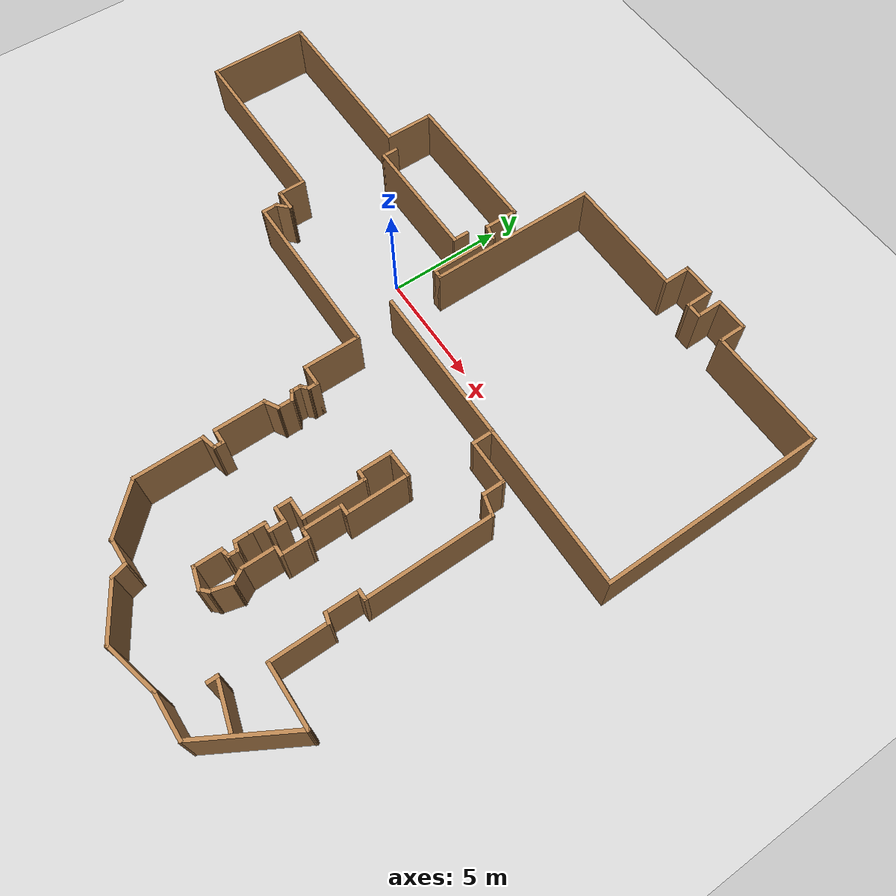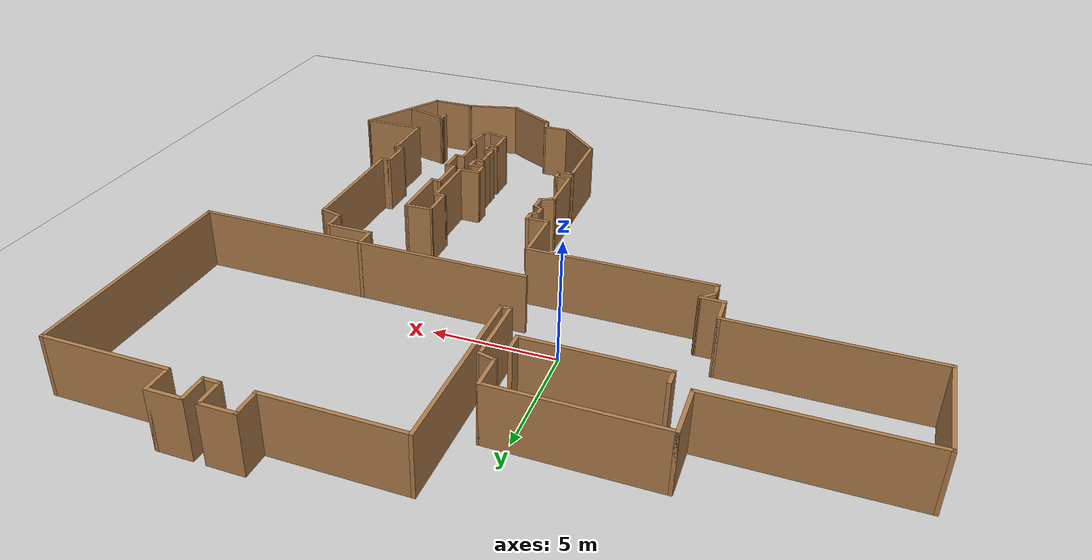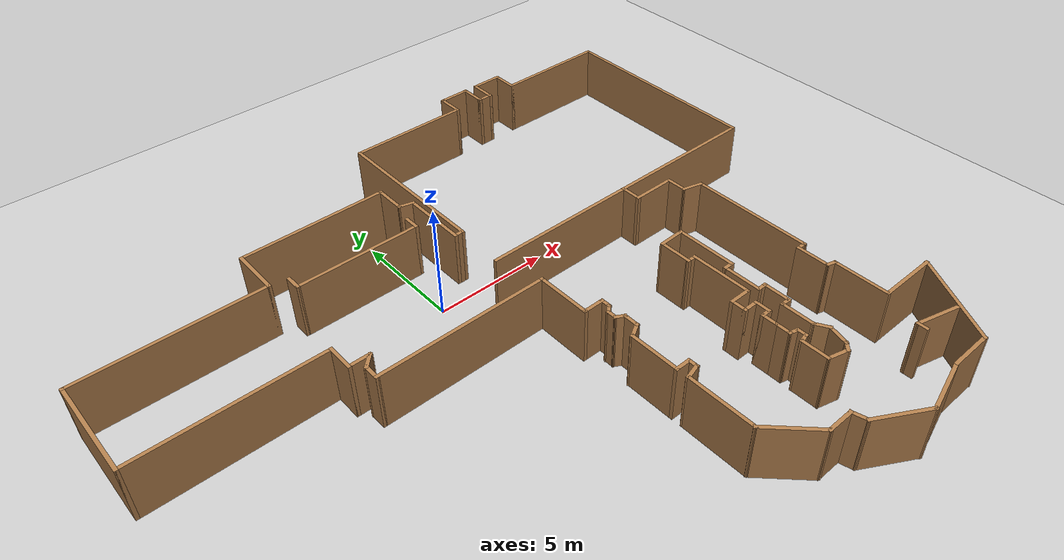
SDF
<sdf version="1.6">
 <world name="default">
  <model name="ground_plane">
   <static>1</static>
   <link name="link">
    <collision name="collision">
     <geometry><plane><normal>0 0 1</normal><size>100 100</size></plane></geometry>
     <surface><friction><ode><mu>100</mu><mu2>50</mu2></ode></friction></surface>
    </collision>
    <visual name="visual">
     <cast_shadows>0</cast_shadows>
     <geometry><plane><normal>0 0 1</normal><size>100 100</size></plane></geometry>
     <material>
      <script><uri>file://media/materials/scripts/gazebo.material</uri><name>Gazebo/Grey</name></script>
     </material>
    </visual>
   </link>
  </model>
  <model name="Robita_0">
   <pose>1.32667 -3.55766 0 0 -0 0</pose>
   <link name="Wall_0">
    <collision name="Wall_0_Collision">
     <geometry><box><size>4.5 0.15 2.5</size></box></geometry>
     <pose>0 0 1.25 0 -0 0</pose>
    </collision>
    <visual name="Wall_0_Visual">
     <pose>0 0 1.25 0 -0 0</pose>
     <geometry><box><size>4.5 0.15 2.5</size></box></geometry>
     <material>
      <script><uri>file://media/materials/scripts/gazebo.material</uri><name>Gazebo/Wood</name></script>
      <ambient>1 1 1 1</ambient>
     </material>
    </visual>
    <pose>-14.3148 4.60052 0 0 0 -1.5708</pose>
   </link>
   <link name="Wall_1">
    <collision name="Wall_1_Collision">
     <geometry><box><size>7.75 0.15 2.5</size></box></geometry>
     <pose>0 0 1.25 0 -0 0</pose>
    </collision>
    <visual name="Wall_1_Visual">
     <pose>0 0 1.25 0 -0 0</pose>
     <geometry><box><size>7.75 0.15 2.5</size></box></geometry>
     <material>
      <script><uri>file://media/materials/scripts/gazebo.material</uri><name>Gazebo/Wood</name></script>
      <ambient>1 1 1 1</ambient>
     </material>
    </visual>
    <pose>-10.5148 2.42552 0 0 -0 0</pose>
   </link>
   <link name="Wall_10">
    <collision name="Wall_10_Collision">
     <geometry><box><size>0.5 0.15 2.5</size></box></geometry>
     <pose>0 0 1.25 0 -0 0</pose>
    </collision>
    <visual name="Wall_10_Visual">
     <pose>0 0 1.25 0 -0 0</pose>
     <geometry><box><size>0.5 0.15 2.5</size></box></geometry>
     <material>
      <script><uri>file://media/materials/scripts/gazebo.material</uri><name>Gazebo/Wood</name></script>
      <ambient>1 1 1 1</ambient>
     </material>
    </visual>
    <pose>1.91096 -2.22374 0 0 0 -1.5708</pose>
   </link>
   <link name="Wall_101">
    <collision name="Wall_101_Collision">
     <geometry><box><size>9.75 0.15 2.5</size></box></geometry>
     <pose>0 0 1.25 0 -0 0</pose>
    </collision>
    <visual name="Wall_101_Visual">
     <pose>0 0 1.25 0 -0 0</pose>
     <geometry><box><size>9.75 0.15 2.5</size></box></geometry>
     <material>
      <script><uri>file://media/materials/scripts/gazebo.material</uri><name>Gazebo/Wood</name></script>
      <ambient>1 1 1 1</ambient>
     </material>
    </visual>
    <pose>14.3148 7.07023 0 0 0 -1.5708</pose>
   </link>
   <link name="Wall_104">
    <collision name="Wall_104_Collision">
     <geometry><box><size>14 0.15 2.5</size></box></geometry>
     <pose>0 0 1.25 0 -0 0</pose>
    </collision>
    <visual name="Wall_104_Visual">
     <pose>0 0 1.25 0 -0 0</pose>
     <geometry><box><size>14 0.15 2.5</size></box></geometry>
     <material>
      <script><uri>file://media/materials/scripts/gazebo.material</uri><name>Gazebo/Wood</name></script>
      <ambient>1 1 1 1</ambient>
     </material>
    </visual>
    <pose>7.38978 2.27023 0 0 -0 3.14159</pose>
   </link>
   <link name="Wall_108">
    <collision name="Wall_108_Collision">
     <geometry><box><size>1 0.15 2.5</size></box></geometry>
     <pose>0 0 1.25 0 -0 0</pose>
    </collision>
    <visual name="Wall_108_Visual">
     <pose>0 0 1.25 0 -0 0</pose>
     <geometry><box><size>1 0.15 2.5</size></box></geometry>
     <material>
      <script><uri>file://media/materials/scripts/gazebo.material</uri><name>Gazebo/Wood</name></script>
      <ambient>1 1 1 1</ambient>
     </material>
    </visual>
    <pose>7.33038 1.85173 0 0 -0 1.5708</pose>
   </link>
   <link name="Wall_11">
    <collision name="Wall_11_Collision">
     <geometry><box><size>0.5 0.15 2.5</size></box></geometry>
     <pose>0 0 1.25 0 -0 0</pose>
    </collision>
    <visual name="Wall_11_Visual">
     <pose>0 0 1.25 0 -0 0</pose>
     <geometry><box><size>0.5 0.15 2.5</size></box></geometry>
     <material>
      <script><uri>file://media/materials/scripts/gazebo.material</uri><name>Gazebo/Wood</name></script>
      <ambient>1 1 1 1</ambient>
     </material>
    </visual>
    <pose>1.78721 -2.52249 0 0 0 -2.35619</pose>
   </link>
   <link name="Wall_110">
    <collision name="Wall_110_Collision">
     <geometry><box><size>1.5 0.15 2.5</size></box></geometry>
     <pose>0 0 1.25 0 -0 0</pose>
    </collision>
    <visual name="Wall_110_Visual">
     <pose>0 0 1.25 0 -0 0</pose>
     <geometry><box><size>1.5 0.15 2.5</size></box></geometry>
     <material>
      <script><uri>file://media/materials/scripts/gazebo.material</uri><name>Gazebo/Wood</name></script>
      <ambient>1 1 1 1</ambient>
     </material>
    </visual>
    <pose>5.90773 -1.97726 0 0 0 -1.57103</pose>
   </link>
   <link name="Wall_118">
    <collision name="Wall_118_Collision">
     <geometry><box><size>0.5 0.15 2.5</size></box></geometry>
     <pose>0 0 1.25 0 -0 0</pose>
    </collision>
    <visual name="Wall_118_Visual">
     <pose>0 0 1.25 0 -0 0</pose>
     <geometry><box><size>0.5 0.15 2.5</size></box></geometry>
     <material>
      <script><uri>file://media/materials/scripts/gazebo.material</uri><name>Gazebo/Wood</name></script>
      <ambient>1 1 1 1</ambient>
     </material>
    </visual>
    <pose>6.08258 -2.65212 0 0 -0 0</pose>
   </link>
   <link name="Wall_119">
    <collision name="Wall_119_Collision">
     <geometry><box><size>2.75 0.15 2.5</size></box></geometry>
     <pose>0 0 1.25 0 -0 0</pose>
    </collision>
    <visual name="Wall_119_Visual">
     <pose>0 0 1.25 0 -0 0</pose>
     <geometry><box><size>2.75 0.15 2.5</size></box></geometry>
     <material>
      <script><uri>file://media/materials/scripts/gazebo.material</uri><name>Gazebo/Wood</name></script>
      <ambient>1 1 1 1</ambient>
     </material>
    </visual>
    <pose>6.25773 -3.95226 0 0 0 -1.57068</pose>
   </link>
   <link name="Wall_12">
    <collision name="Wall_12_Collision">
     <geometry><box><size>0.5 0.15 2.5</size></box></geometry>
     <pose>0 0 1.25 0 -0 0</pose>
    </collision>
    <visual name="Wall_12_Visual">
     <pose>0 0 1.25 0 -0 0</pose>
     <geometry><box><size>0.5 0.15 2.5</size></box></geometry>
     <material>
      <script><uri>file://media/materials/scripts/gazebo.material</uri><name>Gazebo/Wood</name></script>
      <ambient>1 1 1 1</ambient>
     </material>
    </visual>
    <pose>1.66347 -2.82123 0 0 0 -1.5708</pose>
   </link>
   <link name="Wall_127">
    <collision name="Wall_127_Collision">
     <geometry><box><size>1 0.15 2.5</size></box></geometry>
     <pose>0 0 1.25 0 -0 0</pose>
    </collision>
    <visual name="Wall_127_Visual">
     <pose>0 0 1.25 0 -0 0</pose>
     <geometry><box><size>1 0.15 2.5</size></box></geometry>
     <material>
      <script><uri>file://media/materials/scripts/gazebo.material</uri><name>Gazebo/Wood</name></script>
      <ambient>1 1 1 1</ambient>
     </material>
    </visual>
    <pose>5.83289 -5.25239 0 0 -0 3.14159</pose>
   </link>
   <link name="Wall_128">
    <collision name="Wall_128_Collision">
     <geometry><box><size>0.75 0.15 2.5</size></box></geometry>
     <pose>0 0 1.25 0 -0 0</pose>
    </collision>
    <visual name="Wall_128_Visual">
     <pose>0 0 1.25 0 -0 0</pose>
     <geometry><box><size>0.75 0.15 2.5</size></box></geometry>
     <material>
      <script><uri>file://media/materials/scripts/gazebo.material</uri><name>Gazebo/Wood</name></script>
      <ambient>1 1 1 1</ambient>
     </material>
    </visual>
    <pose>5.40789 -5.55239 0 0 0 -1.5708</pose>
   </link>
   <link name="Wall_129">
    <collision name="Wall_129_Collision">
     <geometry><box><size>0.75 0.15 2.5</size></box></geometry>
     <pose>0 0 1.25 0 -0 0</pose>
    </collision>
    <visual name="Wall_129_Visual">
     <pose>0 0 1.25 0 -0 0</pose>
     <geometry><box><size>0.75 0.15 2.5</size></box></geometry>
     <material>
      <script><uri>file://media/materials/scripts/gazebo.material</uri><name>Gazebo/Wood</name></script>
      <ambient>1 1 1 1</ambient>
     </material>
    </visual>
    <pose>5.70789 -5.85239 0 0 -0 0</pose>
   </link>
   <link name="Wall_13">
    <collision name="Wall_13_Collision">
     <geometry><box><size>0.5 0.15 2.5</size></box></geometry>
     <pose>0 0 1.25 0 -0 0</pose>
    </collision>
    <visual name="Wall_13_Visual">
     <pose>0 0 1.25 0 -0 0</pose>
     <geometry><box><size>0.5 0.15 2.5</size></box></geometry>
     <material>
      <script><uri>file://media/materials/scripts/gazebo.material</uri><name>Gazebo/Wood</name></script>
      <ambient>1 1 1 1</ambient>
     </material>
    </visual>
    <pose>1.81503 -3.08373 0 0 0 -0.523599</pose>
   </link>
   <link name="Wall_130">
    <collision name="Wall_130_Collision">
     <geometry><box><size>0.75 0.15 2.5</size></box></geometry>
     <pose>0 0 1.25 0 -0 0</pose>
    </collision>
    <visual name="Wall_130_Visual">
     <pose>0 0 1.25 0 -0 0</pose>
     <geometry><box><size>0.75 0.15 2.5</size></box></geometry>
     <material>
      <script><uri>file://media/materials/scripts/gazebo.material</uri><name>Gazebo/Wood</name></script>
      <ambient>1 1 1 1</ambient>
     </material>
    </visual>
    <pose>6.00789 -6.15239 0 0 0 -1.5708</pose>
   </link>
   <link name="Wall_131">
    <collision name="Wall_131_Collision">
     <geometry><box><size>0.5 0.15 2.5</size></box></geometry>
     <pose>0 0 1.25 0 -0 0</pose>
    </collision>
    <visual name="Wall_131_Visual">
     <pose>0 0 1.25 0 -0 0</pose>
     <geometry><box><size>0.5 0.15 2.5</size></box></geometry>
     <material>
      <script><uri>file://media/materials/scripts/gazebo.material</uri><name>Gazebo/Wood</name></script>
      <ambient>1 1 1 1</ambient>
     </material>
    </visual>
    <pose>5.83289 -6.45239 0 0 -0 3.14159</pose>
   </link>
   <link name="Wall_132">
    <collision name="Wall_132_Collision">
     <geometry><box><size>0.75 0.15 2.5</size></box></geometry>
     <pose>0 0 1.25 0 -0 0</pose>
    </collision>
    <visual name="Wall_132_Visual">
     <pose>0 0 1.25 0 -0 0</pose>
     <geometry><box><size>0.75 0.15 2.5</size></box></geometry>
     <material>
      <script><uri>file://media/materials/scripts/gazebo.material</uri><name>Gazebo/Wood</name></script>
      <ambient>1 1 1 1</ambient>
     </material>
    </visual>
    <pose>5.65789 -6.75239 0 0 0 -1.5708</pose>
   </link>
   <link name="Wall_133">
    <collision name="Wall_133_Collision">
     <geometry><box><size>0.75 0.15 2.5</size></box></geometry>
     <pose>0 0 1.25 0 -0 0</pose>
    </collision>
    <visual name="Wall_133_Visual">
     <pose>0 0 1.25 0 -0 0</pose>
     <geometry><box><size>0.75 0.15 2.5</size></box></geometry>
     <material>
      <script><uri>file://media/materials/scripts/gazebo.material</uri><name>Gazebo/Wood</name></script>
      <ambient>1 1 1 1</ambient>
     </material>
    </visual>
    <pose>5.65789 -7.35239 0 0 0 -1.5708</pose>
   </link>
   <link name="Wall_134">
    <collision name="Wall_134_Collision">
     <geometry><box><size>0.5 0.15 2.5</size></box></geometry>
     <pose>0 0 1.25 0 -0 0</pose>
    </collision>
    <visual name="Wall_134_Visual">
     <pose>0 0 1.25 0 -0 0</pose>
     <geometry><box><size>0.5 0.15 2.5</size></box></geometry>
     <material>
      <script><uri>file://media/materials/scripts/gazebo.material</uri><name>Gazebo/Wood</name></script>
      <ambient>1 1 1 1</ambient>
     </material>
    </visual>
    <pose>5.82692 -7.69768 0 0 0 -0.261799</pose>
   </link>
   <link name="Wall_135">
    <collision name="Wall_135_Collision">
     <geometry><box><size>0.5 0.15 2.5</size></box></geometry>
     <pose>0 0 1.25 0 -0 0</pose>
    </collision>
    <visual name="Wall_135_Visual">
     <pose>0 0 1.25 0 -0 0</pose>
     <geometry><box><size>0.5 0.15 2.5</size></box></geometry>
     <material>
      <script><uri>file://media/materials/scripts/gazebo.material</uri><name>Gazebo/Wood</name></script>
      <ambient>1 1 1 1</ambient>
     </material>
    </visual>
    <pose>5.99596 -7.91798 0 0 0 -1.5708</pose>
   </link>
   <link name="Wall_136">
    <collision name="Wall_136_Collision">
     <geometry><box><size>0.5 0.15 2.5</size></box></geometry>
     <pose>0 0 1.25 0 -0 0</pose>
    </collision>
    <visual name="Wall_136_Visual">
     <pose>0 0 1.25 0 -0 0</pose>
     <geometry><box><size>0.5 0.15 2.5</size></box></geometry>
     <material>
      <script><uri>file://media/materials/scripts/gazebo.material</uri><name>Gazebo/Wood</name></script>
      <ambient>1 1 1 1</ambient>
     </material>
    </visual>
    <pose>5.82692 -8.13827 0 0 0 -2.87979</pose>
   </link>
   <link name="Wall_137">
    <collision name="Wall_137_Collision">
     <geometry><box><size>1.25 0.15 2.5</size></box></geometry>
     <pose>0 0 1.25 0 -0 0</pose>
    </collision>
    <visual name="Wall_137_Visual">
     <pose>0 0 1.25 0 -0 0</pose>
     <geometry><box><size>1.25 0.15 2.5</size></box></geometry>
     <material>
      <script><uri>file://media/materials/scripts/gazebo.material</uri><name>Gazebo/Wood</name></script>
      <ambient>1 1 1 1</ambient>
     </material>
    </visual>
    <pose>5.65789 -8.73356 0 0 0 -1.5708</pose>
   </link>
   <link name="Wall_139">
    <collision name="Wall_139_Collision">
     <geometry><box><size>1 0.15 2.5</size></box></geometry>
     <pose>0 0 1.25 0 -0 0</pose>
    </collision>
    <visual name="Wall_139_Visual">
     <pose>0 0 1.25 0 -0 0</pose>
     <geometry><box><size>1 0.15 2.5</size></box></geometry>
     <material>
      <script><uri>file://media/materials/scripts/gazebo.material</uri><name>Gazebo/Wood</name></script>
      <ambient>1 1 1 1</ambient>
     </material>
    </visual>
    <pose>6.06841 -9.39356 0 0 0 -0.261799</pose>
   </link>
   <link name="Wall_14">
    <collision name="Wall_14_Collision">
     <geometry><box><size>0.75 0.15 2.5</size></box></geometry>
     <pose>0 0 1.25 0 -0 0</pose>
    </collision>
    <visual name="Wall_14_Visual">
     <pose>0 0 1.25 0 -0 0</pose>
     <geometry><box><size>0.75 0.15 2.5</size></box></geometry>
     <material>
      <script><uri>file://media/materials/scripts/gazebo.material</uri><name>Gazebo/Wood</name></script>
      <ambient>1 1 1 1</ambient>
     </material>
    </visual>
    <pose>1.96658 -3.47123 0 0 0 -1.5708</pose>
   </link>
   <link name="Wall_140">
    <collision name="Wall_140_Collision">
     <geometry><box><size>0.5 0.15 2.5</size></box></geometry>
     <pose>0 0 1.25 0 -0 0</pose>
    </collision>
    <visual name="Wall_140_Visual">
     <pose>0 0 1.25 0 -0 0</pose>
     <geometry><box><size>0.5 0.15 2.5</size></box></geometry>
     <material>
      <script><uri>file://media/materials/scripts/gazebo.material</uri><name>Gazebo/Wood</name></script>
      <ambient>1 1 1 1</ambient>
     </material>
    </visual>
    <pose>6.60267 -9.37982 0 0 -0 0.785398</pose>
   </link>
   <link name="Wall_141">
    <collision name="Wall_141_Collision">
     <geometry><box><size>1 0.15 2.5</size></box></geometry>
     <pose>0 0 1.25 0 -0 0</pose>
    </collision>
    <visual name="Wall_141_Visual">
     <pose>0 0 1.25 0 -0 0</pose>
     <geometry><box><size>1 0.15 2.5</size></box></geometry>
     <material>
      <script><uri>file://media/materials/scripts/gazebo.material</uri><name>Gazebo/Wood</name></script>
      <ambient>1 1 1 1</ambient>
     </material>
    </visual>
    <pose>6.83641 -8.84555 0 0 -0 1.309</pose>
   </link>
   <link name="Wall_142">
    <collision name="Wall_142_Collision">
     <geometry><box><size>0.75 0.15 2.5</size></box></geometry>
     <pose>0 0 1.25 0 -0 0</pose>
    </collision>
    <visual name="Wall_142_Visual">
     <pose>0 0 1.25 0 -0 0</pose>
     <geometry><box><size>0.75 0.15 2.5</size></box></geometry>
     <material>
      <script><uri>file://media/materials/scripts/gazebo.material</uri><name>Gazebo/Wood</name></script>
      <ambient>1 1 1 1</ambient>
     </material>
    </visual>
    <pose>6.79641 -8.17523 0 0 -0 2.0944</pose>
   </link>
   <link name="Wall_143">
    <collision name="Wall_143_Collision">
     <geometry><box><size>1.5 0.15 2.5</size></box></geometry>
     <pose>0 0 1.25 0 -0 0</pose>
    </collision>
    <visual name="Wall_143_Visual">
     <pose>0 0 1.25 0 -0 0</pose>
     <geometry><box><size>1.5 0.15 2.5</size></box></geometry>
     <material>
      <script><uri>file://media/materials/scripts/gazebo.material</uri><name>Gazebo/Wood</name></script>
      <ambient>1 1 1 1</ambient>
     </material>
    </visual>
    <pose>6.64641 -7.24042 0 0 -0 1.5708</pose>
   </link>
   <link name="Wall_148">
    <collision name="Wall_148_Collision">
     <geometry><box><size>0.5 0.15 2.5</size></box></geometry>
     <pose>0 0 1.25 0 -0 0</pose>
    </collision>
    <visual name="Wall_148_Visual">
     <pose>0 0 1.25 0 -0 0</pose>
     <geometry><box><size>0.5 0.15 2.5</size></box></geometry>
     <material>
      <script><uri>file://media/materials/scripts/gazebo.material</uri><name>Gazebo/Wood</name></script>
      <ambient>1 1 1 1</ambient>
     </material>
    </visual>
    <pose>6.82141 -6.56542 0 0 -0 0</pose>
   </link>
   <link name="Wall_149">
    <collision name="Wall_149_Collision">
     <geometry><box><size>1.25 0.15 2.5</size></box></geometry>
     <pose>0 0 1.25 0 -0 0</pose>
    </collision>
    <visual name="Wall_149_Visual">
     <pose>0 0 1.25 0 -0 0</pose>
     <geometry><box><size>1.25 0.15 2.5</size></box></geometry>
     <material>
      <script><uri>file://media/materials/scripts/gazebo.material</uri><name>Gazebo/Wood</name></script>
      <ambient>1 1 1 1</ambient>
     </material>
    </visual>
    <pose>6.99649 -6.01527 0 0 -0 1.57064</pose>
   </link>
   <link name="Wall_15">
    <collision name="Wall_15_Collision">
     <geometry><box><size>0.75 0.15 2.5</size></box></geometry>
     <pose>0 0 1.25 0 -0 0</pose>
    </collision>
    <visual name="Wall_15_Visual">
     <pose>0 0 1.25 0 -0 0</pose>
     <geometry><box><size>0.75 0.15 2.5</size></box></geometry>
     <material>
      <script><uri>file://media/materials/scripts/gazebo.material</uri><name>Gazebo/Wood</name></script>
      <ambient>1 1 1 1</ambient>
     </material>
    </visual>
    <pose>1.70677 -3.92123 0 0 0 -2.61799</pose>
   </link>
   <link name="Wall_154">
    <collision name="Wall_154_Collision">
     <geometry><box><size>0.5 0.15 2.5</size></box></geometry>
     <pose>0 0 1.25 0 -0 0</pose>
    </collision>
    <visual name="Wall_154_Visual">
     <pose>0 0 1.25 0 -0 0</pose>
     <geometry><box><size>0.5 0.15 2.5</size></box></geometry>
     <material>
      <script><uri>file://media/materials/scripts/gazebo.material</uri><name>Gazebo/Wood</name></script>
      <ambient>1 1 1 1</ambient>
     </material>
    </visual>
    <pose>6.82158 -5.46512 0 0 -0 3.14159</pose>
   </link>
   <link name="Wall_155">
    <collision name="Wall_155_Collision">
     <geometry><box><size>1.75 0.15 2.5</size></box></geometry>
     <pose>0 0 1.25 0 -0 0</pose>
    </collision>
    <visual name="Wall_155_Visual">
     <pose>0 0 1.25 0 -0 0</pose>
     <geometry><box><size>1.75 0.15 2.5</size></box></geometry>
     <material>
      <script><uri>file://media/materials/scripts/gazebo.material</uri><name>Gazebo/Wood</name></script>
      <ambient>1 1 1 1</ambient>
     </material>
    </visual>
    <pose>6.64649 -4.66527 0 0 -0 1.5709</pose>
   </link>
   <link name="Wall_156">
    <collision name="Wall_156_Collision">
     <geometry><box><size>0.5 0.15 2.5</size></box></geometry>
     <pose>0 0 1.25 0 -0 0</pose>
    </collision>
    <visual name="Wall_156_Visual">
     <pose>0 0 1.25 0 -0 0</pose>
     <geometry><box><size>0.5 0.15 2.5</size></box></geometry>
     <material>
      <script><uri>file://media/materials/scripts/gazebo.material</uri><name>Gazebo/Wood</name></script>
      <ambient>1 1 1 1</ambient>
     </material>
    </visual>
    <pose>6.82141 -3.86542 0 0 -0 0</pose>
   </link>
   <link name="Wall_16">
    <collision name="Wall_16_Collision">
     <geometry><box><size>2.25 0.15 2.5</size></box></geometry>
     <pose>0 0 1.25 0 -0 0</pose>
    </collision>
    <visual name="Wall_16_Visual">
     <pose>0 0 1.25 0 -0 0</pose>
     <geometry><box><size>2.25 0.15 2.5</size></box></geometry>
     <material>
      <script><uri>file://media/materials/scripts/gazebo.material</uri><name>Gazebo/Wood</name></script>
      <ambient>1 1 1 1</ambient>
     </material>
    </visual>
    <pose>1.44697 -5.12123 0 0 0 -1.5708</pose>
   </link>
   <link name="Wall_161">
    <collision name="Wall_161_Collision">
     <geometry><box><size>2.75 0.15 2.5</size></box></geometry>
     <pose>0 0 1.25 0 -0 0</pose>
    </collision>
    <visual name="Wall_161_Visual">
     <pose>0 0 1.25 0 -0 0</pose>
     <geometry><box><size>2.75 0.15 2.5</size></box></geometry>
     <material>
      <script><uri>file://media/materials/scripts/gazebo.material</uri><name>Gazebo/Wood</name></script>
      <ambient>1 1 1 1</ambient>
     </material>
    </visual>
    <pose>6.99641 -2.56542 0 0 -0 1.5708</pose>
   </link>
   <link name="Wall_162">
    <collision name="Wall_162_Collision">
     <geometry><box><size>1.23915 0.15 2.5</size></box></geometry>
     <pose>0 0 1.25 0 -0 0</pose>
    </collision>
    <visual name="Wall_162_Visual">
     <pose>0 0 1.25 0 -0 0</pose>
     <geometry><box><size>1.23915 0.15 2.5</size></box></geometry>
     <material>
      <script><uri>file://media/materials/scripts/gazebo.material</uri><name>Gazebo/Wood</name></script>
      <ambient>1 1 1 1</ambient>
     </material>
    </visual>
    <pose>6.45215 -1.28391 0 0 0 -3.10764</pose>
   </link>
   <link name="Wall_164">
    <collision name="Wall_164_Collision">
     <geometry><box><size>0.5 0.15 2.5</size></box></geometry>
     <pose>0 0 1.25 0 -0 0</pose>
    </collision>
    <visual name="Wall_164_Visual">
     <pose>0 0 1.25 0 -0 0</pose>
     <geometry><box><size>0.5 0.15 2.5</size></box></geometry>
     <material>
      <script><uri>file://media/materials/scripts/gazebo.material</uri><name>Gazebo/Wood</name></script>
      <ambient>1 1 1 1</ambient>
     </material>
    </visual>
    <pose>9.42037 -10.5646 0 0 -0 1.5708</pose>
   </link>
   <link name="Wall_165">
    <collision name="Wall_165_Collision">
     <geometry><box><size>2 0.15 2.5</size></box></geometry>
     <pose>0 0 1.25 0 -0 0</pose>
    </collision>
    <visual name="Wall_165_Visual">
     <pose>0 0 1.25 0 -0 0</pose>
     <geometry><box><size>2 0.15 2.5</size></box></geometry>
     <material>
      <script><uri>file://media/materials/scripts/gazebo.material</uri><name>Gazebo/Wood</name></script>
      <ambient>1 1 1 1</ambient>
     </material>
    </visual>
    <pose>10.3139 -10.6291 0 0 0 -0.261799</pose>
   </link>
   <link name="Wall_167">
    <collision name="Wall_167_Collision">
     <geometry><box><size>0.75 0.15 2.5</size></box></geometry>
     <pose>0 0 1.25 0 -0 0</pose>
    </collision>
    <visual name="Wall_167_Visual">
     <pose>0 0 1.25 0 -0 0</pose>
     <geometry><box><size>0.75 0.15 2.5</size></box></geometry>
     <material>
      <script><uri>file://media/materials/scripts/gazebo.material</uri><name>Gazebo/Wood</name></script>
      <ambient>1 1 1 1</ambient>
     </material>
    </visual>
    <pose>-5.94942 6.32688 0 0 0 -1.5708</pose>
   </link>
   <link name="Wall_168">
    <collision name="Wall_168_Collision">
     <geometry><box><size>5.5 0.15 2.5</size></box></geometry>
     <pose>0 0 1.25 0 -0 0</pose>
    </collision>
    <visual name="Wall_168_Visual">
     <pose>0 0 1.25 0 -0 0</pose>
     <geometry><box><size>5.5 0.15 2.5</size></box></geometry>
     <material>
      <script><uri>file://media/materials/scripts/gazebo.material</uri><name>Gazebo/Wood</name></script>
      <ambient>1 1 1 1</ambient>
     </material>
    </visual>
    <pose>-3.27438 6.02704 0 0 -0 6.1e-05</pose>
   </link>
   <link name="Wall_169">
    <collision name="Wall_169_Collision">
     <geometry><box><size>0.75 0.15 2.5</size></box></geometry>
     <pose>0 0 1.25 0 -0 0</pose>
    </collision>
    <visual name="Wall_169_Visual">
     <pose>0 0 1.25 0 -0 0</pose>
     <geometry><box><size>0.75 0.15 2.5</size></box></geometry>
     <material>
      <script><uri>file://media/materials/scripts/gazebo.material</uri><name>Gazebo/Wood</name></script>
      <ambient>1 1 1 1</ambient>
     </material>
    </visual>
    <pose>-0.59934 6.3272 0 0 -0 1.5708</pose>
   </link>
   <link name="Wall_2">
    <collision name="Wall_2_Collision">
     <geometry><box><size>1.25 0.15 2.5</size></box></geometry>
     <pose>0 0 1.25 0 -0 0</pose>
    </collision>
    <visual name="Wall_2_Visual">
     <pose>0 0 1.25 0 -0 0</pose>
     <geometry><box><size>1.25 0.15 2.5</size></box></geometry>
     <material>
      <script><uri>file://media/materials/scripts/gazebo.material</uri><name>Gazebo/Wood</name></script>
      <ambient>1 1 1 1</ambient>
     </material>
    </visual>
    <pose>-6.71478 1.87552 0 0 0 -1.5708</pose>
   </link>
   <link name="Wall_21">
    <collision name="Wall_21_Collision">
     <geometry><box><size>0.75 0.15 2.5</size></box></geometry>
     <pose>0 0 1.25 0 -0 0</pose>
    </collision>
    <visual name="Wall_21_Visual">
     <pose>0 0 1.25 0 -0 0</pose>
     <geometry><box><size>0.75 0.15 2.5</size></box></geometry>
     <material>
      <script><uri>file://media/materials/scripts/gazebo.material</uri><name>Gazebo/Wood</name></script>
      <ambient>1 1 1 1</ambient>
     </material>
    </visual>
    <pose>1.74696 -6.17123 0 0 -0 0</pose>
   </link>
   <link name="Wall_22">
    <collision name="Wall_22_Collision">
     <geometry><box><size>0.5 0.15 2.5</size></box></geometry>
     <pose>0 0 1.25 0 -0 0</pose>
    </collision>
    <visual name="Wall_22_Visual">
     <pose>0 0 1.25 0 -0 0</pose>
     <geometry><box><size>0.5 0.15 2.5</size></box></geometry>
     <material>
      <script><uri>file://media/materials/scripts/gazebo.material</uri><name>Gazebo/Wood</name></script>
      <ambient>1 1 1 1</ambient>
     </material>
    </visual>
    <pose>2.04697 -6.34623 0 0 0 -1.5708</pose>
   </link>
   <link name="Wall_25">
    <collision name="Wall_25_Collision">
     <geometry><box><size>0.75 0.15 2.5</size></box></geometry>
     <pose>0 0 1.25 0 -0 0</pose>
    </collision>
    <visual name="Wall_25_Visual">
     <pose>0 0 1.25 0 -0 0</pose>
     <geometry><box><size>0.75 0.15 2.5</size></box></geometry>
     <material>
      <script><uri>file://media/materials/scripts/gazebo.material</uri><name>Gazebo/Wood</name></script>
      <ambient>1 1 1 1</ambient>
     </material>
    </visual>
    <pose>1.75719 -6.59888 0 0 0 -2.87979</pose>
   </link>
   <link name="Wall_26">
    <collision name="Wall_26_Collision">
     <geometry><box><size>3 0.15 2.5</size></box></geometry>
     <pose>0 0 1.25 0 -0 0</pose>
    </collision>
    <visual name="Wall_26_Visual">
     <pose>0 0 1.25 0 -0 0</pose>
     <geometry><box><size>3 0.15 2.5</size></box></geometry>
     <material>
      <script><uri>file://media/materials/scripts/gazebo.material</uri><name>Gazebo/Wood</name></script>
      <ambient>1 1 1 1</ambient>
     </material>
    </visual>
    <pose>1.46741 -8.10152 0 0 0 -1.5708</pose>
   </link>
   <link name="Wall_27">
    <collision name="Wall_27_Collision">
     <geometry><box><size>2.5 0.15 2.5</size></box></geometry>
     <pose>0 0 1.25 0 -0 0</pose>
    </collision>
    <visual name="Wall_27_Visual">
     <pose>0 0 1.25 0 -0 0</pose>
     <geometry><box><size>2.5 0.15 2.5</size></box></geometry>
     <material>
      <script><uri>file://media/materials/scripts/gazebo.material</uri><name>Gazebo/Wood</name></script>
      <ambient>1 1 1 1</ambient>
     </material>
    </visual>
    <pose>2.29826 -10.3574 0 0 0 -0.785398</pose>
   </link>
   <link name="Wall_29">
    <collision name="Wall_29_Collision">
     <geometry><box><size>1.25 0.15 2.5</size></box></geometry>
     <pose>0 0 1.25 0 -0 0</pose>
    </collision>
    <visual name="Wall_29_Visual">
     <pose>0 0 1.25 0 -0 0</pose>
     <geometry><box><size>1.25 0.15 2.5</size></box></geometry>
     <material>
      <script><uri>file://media/materials/scripts/gazebo.material</uri><name>Gazebo/Wood</name></script>
      <ambient>1 1 1 1</ambient>
     </material>
    </visual>
    <pose>3.67911 -11.1882 0 0 -0 0</pose>
   </link>
   <link name="Wall_3">
    <collision name="Wall_3_Collision">
     <geometry><box><size>1 0.15 2.5</size></box></geometry>
     <pose>0 0 1.25 0 -0 0</pose>
    </collision>
    <visual name="Wall_3_Visual">
     <pose>0 0 1.25 0 -0 0</pose>
     <geometry><box><size>1 0.15 2.5</size></box></geometry>
     <material>
      <script><uri>file://media/materials/scripts/gazebo.material</uri><name>Gazebo/Wood</name></script>
      <ambient>1 1 1 1</ambient>
     </material>
    </visual>
    <pose>-6.28978 1.32552 0 0 -0 0</pose>
   </link>
   <link name="Wall_30">
    <collision name="Wall_30_Collision">
     <geometry><box><size>0.75 0.15 2.5</size></box></geometry>
     <pose>0 0 1.25 0 -0 0</pose>
    </collision>
    <visual name="Wall_30_Visual">
     <pose>0 0 1.25 0 -0 0</pose>
     <geometry><box><size>0.75 0.15 2.5</size></box></geometry>
     <material>
      <script><uri>file://media/materials/scripts/gazebo.material</uri><name>Gazebo/Wood</name></script>
      <ambient>1 1 1 1</ambient>
     </material>
    </visual>
    <pose>4.30676 -11.478 0 0 0 -1.309</pose>
   </link>
   <link name="Wall_31">
    <collision name="Wall_31_Collision">
     <geometry><box><size>2.5 0.15 2.5</size></box></geometry>
     <pose>0 0 1.25 0 -0 0</pose>
    </collision>
    <visual name="Wall_31_Visual">
     <pose>0 0 1.25 0 -0 0</pose>
     <geometry><box><size>2.5 0.15 2.5</size></box></geometry>
     <material>
      <script><uri>file://media/materials/scripts/gazebo.material</uri><name>Gazebo/Wood</name></script>
      <ambient>1 1 1 1</ambient>
     </material>
    </visual>
    <pose>5.40198 -12.3553 0 0 0 -0.523599</pose>
   </link>
   <link name="Wall_34">
    <collision name="Wall_34_Collision">
     <geometry><box><size>2.5 0.15 2.5</size></box></geometry>
     <pose>0 0 1.25 0 -0 0</pose>
    </collision>
    <visual name="Wall_34_Visual">
     <pose>0 0 1.25 0 -0 0</pose>
     <geometry><box><size>2.5 0.15 2.5</size></box></geometry>
     <material>
      <script><uri>file://media/materials/scripts/gazebo.material</uri><name>Gazebo/Wood</name></script>
      <ambient>1 1 1 1</ambient>
     </material>
    </visual>
    <pose>7.55452 -12.6387 0 0 -0 0.261799</pose>
   </link>
   <link name="Wall_35">
    <collision name="Wall_35_Collision">
     <geometry><box><size>2 0.15 2.5</size></box></geometry>
     <pose>0 0 1.25 0 -0 0</pose>
    </collision>
    <visual name="Wall_35_Visual">
     <pose>0 0 1.25 0 -0 0</pose>
     <geometry><box><size>2 0.15 2.5</size></box></geometry>
     <material>
      <script><uri>file://media/materials/scripts/gazebo.material</uri><name>Gazebo/Wood</name></script>
      <ambient>1 1 1 1</ambient>
     </material>
    </visual>
    <pose>9.61449 -12.3346 0 0 -0 0</pose>
   </link>
   <link name="Wall_36">
    <collision name="Wall_36_Collision">
     <geometry><box><size>4.25 0.15 2.5</size></box></geometry>
     <pose>0 0 1.25 0 -0 0</pose>
    </collision>
    <visual name="Wall_36_Visual">
     <pose>0 0 1.25 0 -0 0</pose>
     <geometry><box><size>4.25 0.15 2.5</size></box></geometry>
     <material>
      <script><uri>file://media/materials/scripts/gazebo.material</uri><name>Gazebo/Wood</name></script>
      <ambient>1 1 1 1</ambient>
     </material>
    </visual>
    <pose>11.5645 -10.5592 0 0 -0 1.0472</pose>
   </link>
   <link name="Wall_4">
    <collision name="Wall_4_Collision">
     <geometry><box><size>0.75 0.15 2.5</size></box></geometry>
     <pose>0 0 1.25 0 -0 0</pose>
    </collision>
    <visual name="Wall_4_Visual">
     <pose>0 0 1.25 0 -0 0</pose>
     <geometry><box><size>0.75 0.15 2.5</size></box></geometry>
     <material>
      <script><uri>file://media/materials/scripts/gazebo.material</uri><name>Gazebo/Wood</name></script>
      <ambient>1 1 1 1</ambient>
     </material>
    </visual>
    <pose>-6.0771 1.1132 0 0 0 -2.3562</pose>
   </link>
   <link name="Wall_40">
    <collision name="Wall_40_Collision">
     <geometry><box><size>2.75 0.15 2.5</size></box></geometry>
     <pose>0 0 1.25 0 -0 0</pose>
    </collision>
    <visual name="Wall_40_Visual">
     <pose>0 0 1.25 0 -0 0</pose>
     <geometry><box><size>2.75 0.15 2.5</size></box></geometry>
     <material>
      <script><uri>file://media/materials/scripts/gazebo.material</uri><name>Gazebo/Wood</name></script>
      <ambient>1 1 1 1</ambient>
     </material>
    </visual>
    <pose>11.2895 -8.78385 0 0 -0 3.14159</pose>
   </link>
   <link name="Wall_41">
    <collision name="Wall_41_Collision">
     <geometry><box><size>2.5 0.15 2.5</size></box></geometry>
     <pose>0 0 1.25 0 -0 0</pose>
    </collision>
    <visual name="Wall_41_Visual">
     <pose>0 0 1.25 0 -0 0</pose>
     <geometry><box><size>2.5 0.15 2.5</size></box></geometry>
     <material>
      <script><uri>file://media/materials/scripts/gazebo.material</uri><name>Gazebo/Wood</name></script>
      <ambient>1 1 1 1</ambient>
     </material>
    </visual>
    <pose>9.98949 -7.60885 0 0 -0 1.5708</pose>
   </link>
   <link name="Wall_42">
    <collision name="Wall_42_Collision">
     <geometry><box><size>0.5 0.15 2.5</size></box></geometry>
     <pose>0 0 1.25 0 -0 0</pose>
    </collision>
    <visual name="Wall_42_Visual">
     <pose>0 0 1.25 0 -0 0</pose>
     <geometry><box><size>0.5 0.15 2.5</size></box></geometry>
     <material>
      <script><uri>file://media/materials/scripts/gazebo.material</uri><name>Gazebo/Wood</name></script>
      <ambient>1 1 1 1</ambient>
     </material>
    </visual>
    <pose>9.82045 -6.38856 0 0 -0 2.87979</pose>
   </link>
   <link name="Wall_43">
    <collision name="Wall_43_Collision">
     <geometry><box><size>1.5 0.15 2.5</size></box></geometry>
     <pose>0 0 1.25 0 -0 0</pose>
    </collision>
    <visual name="Wall_43_Visual">
     <pose>0 0 1.25 0 -0 0</pose>
     <geometry><box><size>1.5 0.15 2.5</size></box></geometry>
     <material>
      <script><uri>file://media/materials/scripts/gazebo.material</uri><name>Gazebo/Wood</name></script>
      <ambient>1 1 1 1</ambient>
     </material>
    </visual>
    <pose>9.65141 -5.66826 0 0 -0 1.5708</pose>
   </link>
   <link name="Wall_44">
    <collision name="Wall_44_Collision">
     <geometry><box><size>0.5 0.15 2.5</size></box></geometry>
     <pose>0 0 1.25 0 -0 0</pose>
    </collision>
    <visual name="Wall_44_Visual">
     <pose>0 0 1.25 0 -0 0</pose>
     <geometry><box><size>0.5 0.15 2.5</size></box></geometry>
     <material>
      <script><uri>file://media/materials/scripts/gazebo.material</uri><name>Gazebo/Wood</name></script>
      <ambient>1 1 1 1</ambient>
     </material>
    </visual>
    <pose>9.82641 -4.99326 0 0 -0 0</pose>
   </link>
   <link name="Wall_45">
    <collision name="Wall_45_Collision">
     <geometry><box><size>5.5 0.15 2.5</size></box></geometry>
     <pose>0 0 1.25 0 -0 0</pose>
    </collision>
    <visual name="Wall_45_Visual">
     <pose>0 0 1.25 0 -0 0</pose>
     <geometry><box><size>5.5 0.15 2.5</size></box></geometry>
     <material>
      <script><uri>file://media/materials/scripts/gazebo.material</uri><name>Gazebo/Wood</name></script>
      <ambient>1 1 1 1</ambient>
     </material>
    </visual>
    <pose>10.0014 -2.31826 0 0 -0 1.5708</pose>
   </link>
   <link name="Wall_46">
    <collision name="Wall_46_Collision">
     <geometry><box><size>1 0.15 2.5</size></box></geometry>
     <pose>0 0 1.25 0 -0 0</pose>
    </collision>
    <visual name="Wall_46_Visual">
     <pose>0 0 1.25 0 -0 0</pose>
     <geometry><box><size>1 0.15 2.5</size></box></geometry>
     <material>
      <script><uri>file://media/materials/scripts/gazebo.material</uri><name>Gazebo/Wood</name></script>
      <ambient>1 1 1 1</ambient>
     </material>
    </visual>
    <pose>9.59089 0.466736 0 0 -0 2.87979</pose>
   </link>
   <link name="Wall_47">
    <collision name="Wall_47_Collision">
     <geometry><box><size>1 0.15 2.5</size></box></geometry>
     <pose>0 0 1.25 0 -0 0</pose>
    </collision>
    <visual name="Wall_47_Visual">
     <pose>0 0 1.25 0 -0 0</pose>
     <geometry><box><size>1 0.15 2.5</size></box></geometry>
     <material>
      <script><uri>file://media/materials/scripts/gazebo.material</uri><name>Gazebo/Wood</name></script>
      <ambient>1 1 1 1</ambient>
     </material>
    </visual>
    <pose>9.18038 1.00173 0 0 -0 1.5708</pose>
   </link>
   <link name="Wall_5">
    <collision name="Wall_5_Collision">
     <geometry><box><size>0.75 0.15 2.5</size></box></geometry>
     <pose>0 0 1.25 0 -0 0</pose>
    </collision>
    <visual name="Wall_5_Visual">
     <pose>0 0 1.25 0 -0 0</pose>
     <geometry><box><size>0.75 0.15 2.5</size></box></geometry>
     <material>
      <script><uri>file://media/materials/scripts/gazebo.material</uri><name>Gazebo/Wood</name></script>
      <ambient>1 1 1 1</ambient>
     </material>
    </visual>
    <pose>-6.28942 0.600877 0 0 0 -1.5708</pose>
   </link>
   <link name="Wall_54">
    <collision name="Wall_54_Collision">
     <geometry><box><size>2 0.15 2.5</size></box></geometry>
     <pose>0 0 1.25 0 -0 0</pose>
    </collision>
    <visual name="Wall_54_Visual">
     <pose>0 0 1.25 0 -0 0</pose>
     <geometry><box><size>2 0.15 2.5</size></box></geometry>
     <material>
      <script><uri>file://media/materials/scripts/gazebo.material</uri><name>Gazebo/Wood</name></script>
      <ambient>1 1 1 1</ambient>
     </material>
    </visual>
    <pose>8.25538 1.42673 0 0 -0 3.14159</pose>
   </link>
   <link name="Wall_6">
    <collision name="Wall_6_Collision">
     <geometry><box><size>7.5 0.15 2.5</size></box></geometry>
     <pose>0 0 1.25 0 -0 0</pose>
    </collision>
    <visual name="Wall_6_Visual">
     <pose>0 0 1.25 0 -0 0</pose>
     <geometry><box><size>7.5 0.15 2.5</size></box></geometry>
     <material>
      <script><uri>file://media/materials/scripts/gazebo.material</uri><name>Gazebo/Wood</name></script>
      <ambient>1 1 1 1</ambient>
     </material>
    </visual>
    <pose>-2.61423 0.301067 0 0 -0 5.2e-05</pose>
   </link>
   <link name="Wall_7">
    <collision name="Wall_7_Collision">
     <geometry><box><size>2.5 0.15 2.5</size></box></geometry>
     <pose>0 0 1.25 0 -0 0</pose>
    </collision>
    <visual name="Wall_7_Visual">
     <pose>0 0 1.25 0 -0 0</pose>
     <geometry><box><size>2.5 0.15 2.5</size></box></geometry>
     <material>
      <script><uri>file://media/materials/scripts/gazebo.material</uri><name>Gazebo/Wood</name></script>
      <ambient>1 1 1 1</ambient>
     </material>
    </visual>
    <pose>1.06096 -0.873743 0 0 0 -1.5708</pose>
   </link>
   <link name="Wall_71">
    <collision name="Wall_71_Collision">
     <geometry><box><size>7.75 0.15 2.5</size></box></geometry>
     <pose>0 0 1.25 0 -0 0</pose>
    </collision>
    <visual name="Wall_71_Visual">
     <pose>0 0 1.25 0 -0 0</pose>
     <geometry><box><size>7.75 0.15 2.5</size></box></geometry>
     <material>
      <script><uri>file://media/materials/scripts/gazebo.material</uri><name>Gazebo/Wood</name></script>
      <ambient>1 1 1 1</ambient>
     </material>
    </visual>
    <pose>-10.5148 6.77552 0 0 -0 0</pose>
   </link>
   <link name="Wall_72">
    <collision name="Wall_72_Collision">
     <geometry><box><size>2.25 0.15 2.5</size></box></geometry>
     <pose>0 0 1.25 0 -0 0</pose>
    </collision>
    <visual name="Wall_72_Visual">
     <pose>0 0 1.25 0 -0 0</pose>
     <geometry><box><size>2.25 0.15 2.5</size></box></geometry>
     <material>
      <script><uri>file://media/materials/scripts/gazebo.material</uri><name>Gazebo/Wood</name></script>
      <ambient>1 1 1 1</ambient>
     </material>
    </visual>
    <pose>-6.71478 7.82552 0 0 -0 1.5708</pose>
   </link>
   <link name="Wall_73">
    <collision name="Wall_73_Collision">
     <geometry><box><size>6.5 0.15 2.5</size></box></geometry>
     <pose>0 0 1.25 0 -0 0</pose>
    </collision>
    <visual name="Wall_73_Visual">
     <pose>0 0 1.25 0 -0 0</pose>
     <geometry><box><size>6.5 0.15 2.5</size></box></geometry>
     <material>
      <script><uri>file://media/materials/scripts/gazebo.material</uri><name>Gazebo/Wood</name></script>
      <ambient>1 1 1 1</ambient>
     </material>
    </visual>
    <pose>-3.53978 8.87552 0 0 -0 0</pose>
   </link>
   <link name="Wall_74">
    <collision name="Wall_74_Collision">
     <geometry><box><size>1.5 0.15 2.5</size></box></geometry>
     <pose>0 0 1.25 0 -0 0</pose>
    </collision>
    <visual name="Wall_74_Visual">
     <pose>0 0 1.25 0 -0 0</pose>
     <geometry><box><size>1.5 0.15 2.5</size></box></geometry>
     <material>
      <script><uri>file://media/materials/scripts/gazebo.material</uri><name>Gazebo/Wood</name></script>
      <ambient>1 1 1 1</ambient>
     </material>
    </visual>
    <pose>-0.364778 8.20052 0 0 0 -1.5708</pose>
   </link>
   <link name="Wall_75">
    <collision name="Wall_75_Collision">
     <geometry><box><size>0.75 0.15 2.5</size></box></geometry>
     <pose>0 0 1.25 0 -0 0</pose>
    </collision>
    <visual name="Wall_75_Visual">
     <pose>0 0 1.25 0 -0 0</pose>
     <geometry><box><size>0.75 0.15 2.5</size></box></geometry>
     <material>
      <script><uri>file://media/materials/scripts/gazebo.material</uri><name>Gazebo/Wood</name></script>
      <ambient>1 1 1 1</ambient>
     </material>
    </visual>
    <pose>-0.075 7.44788 0 0 0 -0.261799</pose>
   </link>
   <link name="Wall_76">
    <collision name="Wall_76_Collision">
     <geometry><box><size>3 0.15 2.5</size></box></geometry>
     <pose>0 0 1.25 0 -0 0</pose>
    </collision>
    <visual name="Wall_76_Visual">
     <pose>0 0 1.25 0 -0 0</pose>
     <geometry><box><size>3 0.15 2.5</size></box></geometry>
     <material>
      <script><uri>file://media/materials/scripts/gazebo.material</uri><name>Gazebo/Wood</name></script>
      <ambient>1 1 1 1</ambient>
     </material>
    </visual>
    <pose>0.214778 5.94523 0 0 0 -1.5708</pose>
   </link>
   <link name="Wall_77">
    <collision name="Wall_77_Collision">
     <geometry><box><size>0.5 0.15 2.5</size></box></geometry>
     <pose>0 0 1.25 0 -0 0</pose>
    </collision>
    <visual name="Wall_77_Visual">
     <pose>0 0 1.25 0 -0 0</pose>
     <geometry><box><size>0.5 0.15 2.5</size></box></geometry>
     <material>
      <script><uri>file://media/materials/scripts/gazebo.material</uri><name>Gazebo/Wood</name></script>
      <ambient>1 1 1 1</ambient>
     </material>
    </visual>
    <pose>0.389778 4.52023 0 0 -0 0</pose>
   </link>
   <link name="Wall_79">
    <collision name="Wall_79_Collision">
     <geometry><box><size>7.5 0.15 2.5</size></box></geometry>
     <pose>0 0 1.25 0 -0 0</pose>
    </collision>
    <visual name="Wall_79_Visual">
     <pose>0 0 1.25 0 -0 0</pose>
     <geometry><box><size>7.5 0.15 2.5</size></box></geometry>
     <material>
      <script><uri>file://media/materials/scripts/gazebo.material</uri><name>Gazebo/Wood</name></script>
      <ambient>1 1 1 1</ambient>
     </material>
    </visual>
    <pose>0.564778 8.19523 0 0 -0 1.5708</pose>
   </link>
   <link name="Wall_80">
    <collision name="Wall_80_Collision">
     <geometry><box><size>5.5 0.15 2.5</size></box></geometry>
     <pose>0 0 1.25 0 -0 0</pose>
    </collision>
    <visual name="Wall_80_Visual">
     <pose>0 0 1.25 0 -0 0</pose>
     <geometry><box><size>5.5 0.15 2.5</size></box></geometry>
     <material>
      <script><uri>file://media/materials/scripts/gazebo.material</uri><name>Gazebo/Wood</name></script>
      <ambient>1 1 1 1</ambient>
     </material>
    </visual>
    <pose>3.23978 11.8702 0 0 -0 0</pose>
   </link>
   <link name="Wall_82">
    <collision name="Wall_82_Collision">
     <geometry><box><size>1.25 0.15 2.5</size></box></geometry>
     <pose>0 0 1.25 0 -0 0</pose>
    </collision>
    <visual name="Wall_82_Visual">
     <pose>0 0 1.25 0 -0 0</pose>
     <geometry><box><size>1.25 0.15 2.5</size></box></geometry>
     <material>
      <script><uri>file://media/materials/scripts/gazebo.material</uri><name>Gazebo/Wood</name></script>
      <ambient>1 1 1 1</ambient>
     </material>
    </visual>
    <pose>5.91478 12.4202 0 0 -0 1.5708</pose>
   </link>
   <link name="Wall_83">
    <collision name="Wall_83_Collision">
     <geometry><box><size>1.5 0.15 2.5</size></box></geometry>
     <pose>0 0 1.25 0 -0 0</pose>
    </collision>
    <visual name="Wall_83_Visual">
     <pose>0 0 1.25 0 -0 0</pose>
     <geometry><box><size>1.5 0.15 2.5</size></box></geometry>
     <material>
      <script><uri>file://media/materials/scripts/gazebo.material</uri><name>Gazebo/Wood</name></script>
      <ambient>1 1 1 1</ambient>
     </material>
    </visual>
    <pose>6.58978 12.9702 0 0 -0 0</pose>
   </link>
   <link name="Wall_84">
    <collision name="Wall_84_Collision">
     <geometry><box><size>1.25 0.15 2.5</size></box></geometry>
     <pose>0 0 1.25 0 -0 0</pose>
    </collision>
    <visual name="Wall_84_Visual">
     <pose>0 0 1.25 0 -0 0</pose>
     <geometry><box><size>1.25 0.15 2.5</size></box></geometry>
     <material>
      <script><uri>file://media/materials/scripts/gazebo.material</uri><name>Gazebo/Wood</name></script>
      <ambient>1 1 1 1</ambient>
     </material>
    </visual>
    <pose>7.26478 12.4202 0 0 0 -1.5708</pose>
   </link>
   <link name="Wall_85">
    <collision name="Wall_85_Collision">
     <geometry><box><size>0.75 0.15 2.5</size></box></geometry>
     <pose>0 0 1.25 0 -0 0</pose>
    </collision>
    <visual name="Wall_85_Visual">
     <pose>0 0 1.25 0 -0 0</pose>
     <geometry><box><size>0.75 0.15 2.5</size></box></geometry>
     <material>
      <script><uri>file://media/materials/scripts/gazebo.material</uri><name>Gazebo/Wood</name></script>
      <ambient>1 1 1 1</ambient>
     </material>
    </visual>
    <pose>7.56478 11.8702 0 0 -0 0</pose>
   </link>
   <link name="Wall_86">
    <collision name="Wall_86_Collision">
     <geometry><box><size>1.25 0.15 2.5</size></box></geometry>
     <pose>0 0 1.25 0 -0 0</pose>
    </collision>
    <visual name="Wall_86_Visual">
     <pose>0 0 1.25 0 -0 0</pose>
     <geometry><box><size>1.25 0.15 2.5</size></box></geometry>
     <material>
      <script><uri>file://media/materials/scripts/gazebo.material</uri><name>Gazebo/Wood</name></script>
      <ambient>1 1 1 1</ambient>
     </material>
    </visual>
    <pose>7.86478 12.4202 0 0 -0 1.5708</pose>
   </link>
   <link name="Wall_87">
    <collision name="Wall_87_Collision">
     <geometry><box><size>1.5 0.15 2.5</size></box></geometry>
     <pose>0 0 1.25 0 -0 0</pose>
    </collision>
    <visual name="Wall_87_Visual">
     <pose>0 0 1.25 0 -0 0</pose>
     <geometry><box><size>1.5 0.15 2.5</size></box></geometry>
     <material>
      <script><uri>file://media/materials/scripts/gazebo.material</uri><name>Gazebo/Wood</name></script>
      <ambient>1 1 1 1</ambient>
     </material>
    </visual>
    <pose>8.53978 12.9702 0 0 -0 0</pose>
   </link>
   <link name="Wall_9">
    <collision name="Wall_9_Collision">
     <geometry><box><size>1 0.15 2.5</size></box></geometry>
     <pose>0 0 1.25 0 -0 0</pose>
    </collision>
    <visual name="Wall_9_Visual">
     <pose>0 0 1.25 0 -0 0</pose>
     <geometry><box><size>1 0.15 2.5</size></box></geometry>
     <material>
      <script><uri>file://media/materials/scripts/gazebo.material</uri><name>Gazebo/Wood</name></script>
      <ambient>1 1 1 1</ambient>
     </material>
    </visual>
    <pose>1.48596 -2.04874 0 0 -0 0</pose>
   </link>
   <link name="Wall_90">
    <collision name="Wall_90_Collision">
     <geometry><box><size>1.25 0.15 2.5</size></box></geometry>
     <pose>0 0 1.25 0 -0 0</pose>
    </collision>
    <visual name="Wall_90_Visual">
     <pose>0 0 1.25 0 -0 0</pose>
     <geometry><box><size>1.25 0.15 2.5</size></box></geometry>
     <material>
      <script><uri>file://media/materials/scripts/gazebo.material</uri><name>Gazebo/Wood</name></script>
      <ambient>1 1 1 1</ambient>
     </material>
    </visual>
    <pose>9.21478 12.4202 0 0 0 -1.5708</pose>
   </link>
   <link name="Wall_91">
    <collision name="Wall_91_Collision">
     <geometry><box><size>5.25 0.15 2.5</size></box></geometry>
     <pose>0 0 1.25 0 -0 0</pose>
    </collision>
    <visual name="Wall_91_Visual">
     <pose>0 0 1.25 0 -0 0</pose>
     <geometry><box><size>5.25 0.15 2.5</size></box></geometry>
     <material>
      <script><uri>file://media/materials/scripts/gazebo.material</uri><name>Gazebo/Wood</name></script>
      <ambient>1 1 1 1</ambient>
     </material>
    </visual>
    <pose>11.7648 11.8702 0 0 -0 0</pose>
   </link>
   <static>1</static>
  </model>
 </world>
</sdf>
